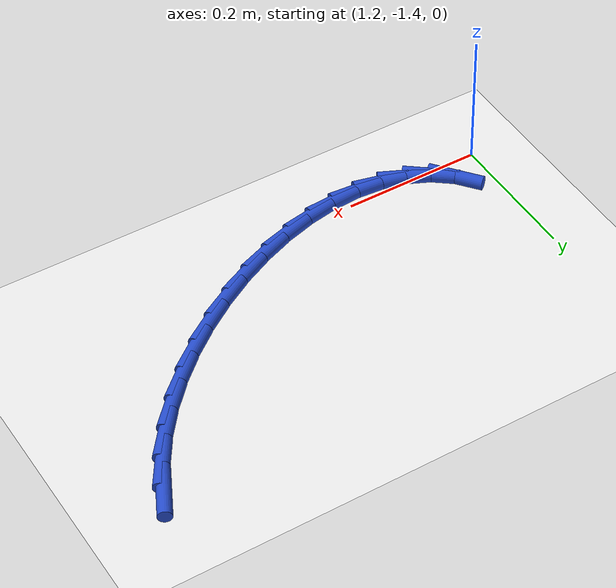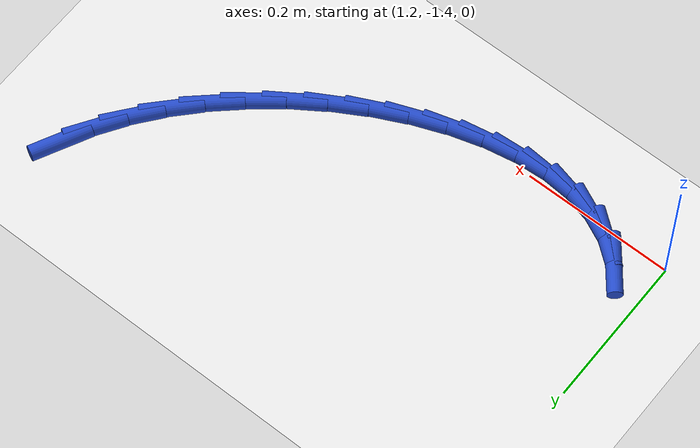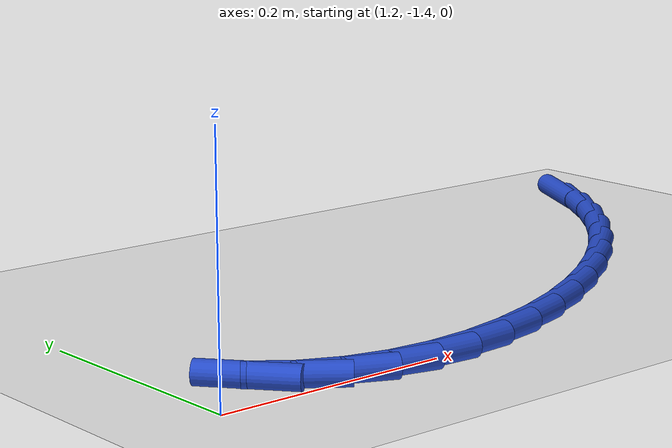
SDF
<sdf version="1.6">
 <world name="default">
  <model name="ground_plane">
   <static>1</static>
   <link name="link">
    <collision name="collision">
     <geometry><plane><normal>0 0 1</normal><size>100 100</size></plane></geometry>
     <surface><friction><ode><mu>100</mu><mu2>50</mu2></ode></friction></surface>
    </collision>
    <visual name="visual">
     <cast_shadows>0</cast_shadows>
     <geometry><plane><normal>0 0 1</normal><size>100 100</size></plane></geometry>
     <material>
      <script><uri>file://media/materials/scripts/gazebo.material</uri><name>Gazebo/WhiteGlow</name></script>
     </material>
    </visual>
   </link>
  </model>
  <model name="line">
   <link name="link_143">
    <pose>1.8655840116800602 -1.0837605364025926 0.01 0 1.57 1.1054159343970245</pose>
    <collision name="collision">
     <geometry><cylinder><radius>0.01</radius><length>0.08</length></cylinder></geometry>
    </collision>
    <visual name="visual">
     <material>
      <script><name>Gazebo/Blue</name><uri>file://media/materials/scripts/gazebo.material</uri></script>
     </material>
     <geometry><cylinder><radius>0.01</radius><length>0.08</length></cylinder></geometry>
    </visual>
   </link>
   <link name="link_144">
    <pose>1.8453211450323068 -1.124111320028247 0.01 0 1.57 0.9974506810661427</pose>
    <collision name="collision">
     <geometry><cylinder><radius>0.01</radius><length>0.08</length></cylinder></geometry>
    </collision>
    <visual name="visual">
     <material>
      <script><name>Gazebo/Blue</name><uri>file://media/materials/scripts/gazebo.material</uri></script>
     </material>
     <geometry><cylinder><radius>0.01</radius><length>0.08</length></cylinder></geometry>
    </visual>
   </link>
   <link name="link_145">
    <pose>1.8200257539743265 -1.163286532482005 0.01 0 1.57 0.9011617265291506</pose>
    <collision name="collision">
     <geometry><cylinder><radius>0.01</radius><length>0.08</length></cylinder></geometry>
    </collision>
    <visual name="visual">
     <material>
      <script><name>Gazebo/Blue</name><uri>file://media/materials/scripts/gazebo.material</uri></script>
     </material>
     <geometry><cylinder><radius>0.01</radius><length>0.08</length></cylinder></geometry>
    </visual>
   </link>
   <link name="link_146">
    <pose>1.79024902426001 -1.200899579547976 0.01 0 1.57 0.8150848312920066</pose>
    <collision name="collision">
     <geometry><cylinder><radius>0.01</radius><length>0.08</length></cylinder></geometry>
    </collision>
    <visual name="visual">
     <material>
      <script><name>Gazebo/Blue</name><uri>file://media/materials/scripts/gazebo.material</uri></script>
     </material>
     <geometry><cylinder><radius>0.01</radius><length>0.08</length></cylinder></geometry>
    </visual>
   </link>
   <link name="link_147">
    <pose>1.7566116971372274 -1.2365957933404765 0.01 0 1.57 0.7363283743635414</pose>
    <collision name="collision">
     <geometry><cylinder><radius>0.01</radius><length>0.08</length></cylinder></geometry>
    </collision>
    <visual name="visual">
     <material>
      <script><name>Gazebo/Blue</name><uri>file://media/materials/scripts/gazebo.material</uri></script>
     </material>
     <geometry><cylinder><radius>0.01</radius><length>0.08</length></cylinder></geometry>
    </visual>
   </link>
   <link name="link_148">
    <pose>1.7197345138538491 -1.2700205059738205 0.01 0 1.57 0.6622913895915123</pose>
    <collision name="collision">
     <geometry><cylinder><radius>0.01</radius><length>0.08</length></cylinder></geometry>
    </collision>
    <visual name="visual">
     <material>
      <script><name>Gazebo/Blue</name><uri>file://media/materials/scripts/gazebo.material</uri></script>
     </material>
     <geometry><cylinder><radius>0.01</radius><length>0.08</length></cylinder></geometry>
    </visual>
   </link>
   <link name="link_149">
    <pose>1.680238215657746 -1.3008190495623235 0.01 0 1.57 0.5905774242093267</pose>
    <collision name="collision">
     <geometry><cylinder><radius>0.01</radius><length>0.08</length></cylinder></geometry>
    </collision>
    <visual name="visual">
     <material>
      <script><name>Gazebo/Blue</name><uri>file://media/materials/scripts/gazebo.material</uri></script>
     </material>
     <geometry><cylinder><radius>0.01</radius><length>0.08</length></cylinder></geometry>
    </visual>
   </link>
   <link name="link_150">
    <pose>1.6387435437967879 -1.3286367562202999 0.01 0 1.57 0.5188601991027771</pose>
    <collision name="collision">
     <geometry><cylinder><radius>0.01</radius><length>0.08</length></cylinder></geometry>
    </collision>
    <visual name="visual">
     <material>
      <script><name>Gazebo/Blue</name><uri>file://media/materials/scripts/gazebo.material</uri></script>
     </material>
     <geometry><cylinder><radius>0.01</radius><length>0.08</length></cylinder></geometry>
    </visual>
   </link>
   <link name="link_151">
    <pose>1.5958712395188441 -1.353118958062065 0.01 0 1.57 0.44472224996510057</pose>
    <collision name="collision">
     <geometry><cylinder><radius>0.01</radius><length>0.08</length></cylinder></geometry>
    </collision>
    <visual name="visual">
     <material>
      <script><name>Gazebo/Blue</name><uri>file://media/materials/scripts/gazebo.material</uri></script>
     </material>
     <geometry><cylinder><radius>0.01</radius><length>0.08</length></cylinder></geometry>
    </visual>
   </link>
   <link name="link_152">
    <pose>1.5522420440717866 -1.3739109872019322 0.01 0 1.57 0.36546815061058247</pose>
    <collision name="collision">
     <geometry><cylinder><radius>0.01</radius><length>0.08</length></cylinder></geometry>
    </collision>
    <visual name="visual">
     <material>
      <script><name>Gazebo/Blue</name><uri>file://media/materials/scripts/gazebo.material</uri></script>
     </material>
     <geometry><cylinder><radius>0.01</radius><length>0.08</length></cylinder></geometry>
    </visual>
   </link>
   <link name="link_153">
    <pose>1.5084766987034854 -1.3906581757542167 0.01 0 1.57 0.2779097814648583</pose>
    <collision name="collision">
     <geometry><cylinder><radius>0.01</radius><length>0.08</length></cylinder></geometry>
    </collision>
    <visual name="visual">
     <material>
      <script><name>Gazebo/Blue</name><uri>file://media/materials/scripts/gazebo.material</uri></script>
     </material>
     <geometry><cylinder><radius>0.01</radius><length>0.08</length></cylinder></geometry>
    </visual>
   </link>
   <link name="link_154">
    <pose>1.4651959446618106 -1.403005855833234 0.01 0 1.57 0.17813721375385608</pose>
    <collision name="collision">
     <geometry><cylinder><radius>0.01</radius><length>0.08</length></cylinder></geometry>
    </collision>
    <visual name="visual">
     <material>
      <script><name>Gazebo/Blue</name><uri>file://media/materials/scripts/gazebo.material</uri></script>
     </material>
     <geometry><cylinder><radius>0.01</radius><length>0.08</length></cylinder></geometry>
    </visual>
   </link>
   <link name="link_155">
    <pose>1.4230205231946331 -1.4105993595532982 0.01 0 1.57 0.06134935741526433</pose>
    <collision name="collision">
     <geometry><cylinder><radius>0.01</radius><length>0.08</length></cylinder></geometry>
    </collision>
    <visual name="visual">
     <material>
      <script><name>Gazebo/Blue</name><uri>file://media/materials/scripts/gazebo.material</uri></script>
     </material>
     <geometry><cylinder><radius>0.01</radius><length>0.08</length></cylinder></geometry>
    </visual>
   </link>
   <link name="link_156">
    <pose>1.3825711755498222 -1.4130840190287244 0.01 0 1.57 -0.07802121276894264</pose>
    <collision name="collision">
     <geometry><cylinder><radius>0.01</radius><length>0.08</length></cylinder></geometry>
    </collision>
    <visual name="visual">
     <material>
      <script><name>Gazebo/Blue</name><uri>file://media/materials/scripts/gazebo.material</uri></script>
     </material>
     <geometry><cylinder><radius>0.01</radius><length>0.08</length></cylinder></geometry>
    </visual>
   </link>
   <link name="link_157">
    <pose>1.3444686429752477 -1.4101051663738269 0.01 0 1.57 -0.24533459934555044</pose>
    <collision name="collision">
     <geometry><cylinder><radius>0.01</radius><length>0.08</length></cylinder></geometry>
    </collision>
    <visual name="visual">
     <material>
      <script><name>Gazebo/Blue</name><uri>file://media/materials/scripts/gazebo.material</uri></script>
     </material>
     <geometry><cylinder><radius>0.01</radius><length>0.08</length></cylinder></geometry>
    </visual>
   </link>
   <link name="link_158">
    <pose>1.3093336667187827 -1.401308133702921 0.01 0 1.57 -0.4430656977687243</pose>
    <collision name="collision">
     <geometry><cylinder><radius>0.01</radius><length>0.08</length></cylinder></geometry>
    </collision>
    <visual name="visual">
     <material>
      <script><name>Gazebo/Blue</name><uri>file://media/materials/scripts/gazebo.material</uri></script>
     </material>
     <geometry><cylinder><radius>0.01</radius><length>0.08</length></cylinder></geometry>
    </visual>
   </link>
   <link name="link_159">
    <pose>1.2777869880282957 -1.386338253130321 0.01 0 1.57 -0.6663721945187339</pose>
    <collision name="collision">
     <geometry><cylinder><radius>0.01</radius><length>0.08</length></cylinder></geometry>
    </collision>
    <visual name="visual">
     <material>
      <script><name>Gazebo/Blue</name><uri>file://media/materials/scripts/gazebo.material</uri></script>
     </material>
     <geometry><cylinder><radius>0.01</radius><length>0.08</length></cylinder></geometry>
    </visual>
   </link>
   <link name="link_160">
    <pose>1.2504493481516568 -1.3648408567703418 0.01 0 1.57 -0.8950595565238432</pose>
    <collision name="collision">
     <geometry><cylinder><radius>0.01</radius><length>0.08</length></cylinder></geometry>
    </collision>
    <visual name="visual">
     <material>
      <script><name>Gazebo/Blue</name><uri>file://media/materials/scripts/gazebo.material</uri></script>
     </material>
     <geometry><cylinder><radius>0.01</radius><length>0.08</length></cylinder></geometry>
    </visual>
   </link>
  </model>
 </world>
</sdf>
